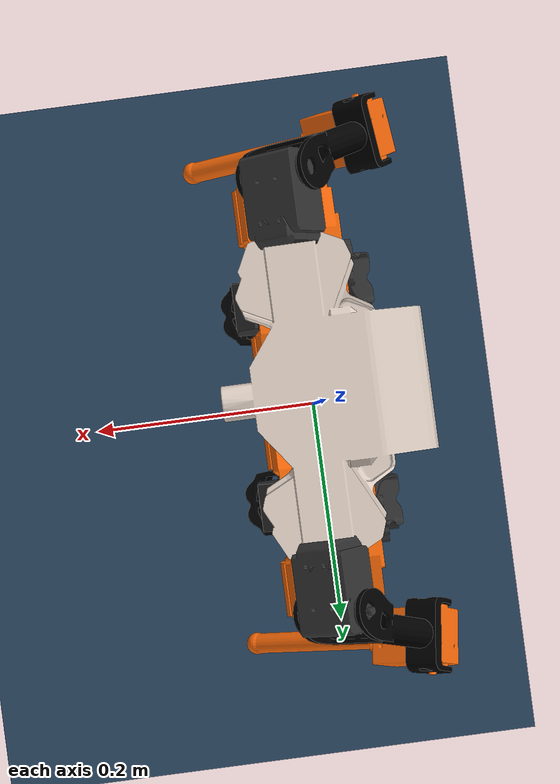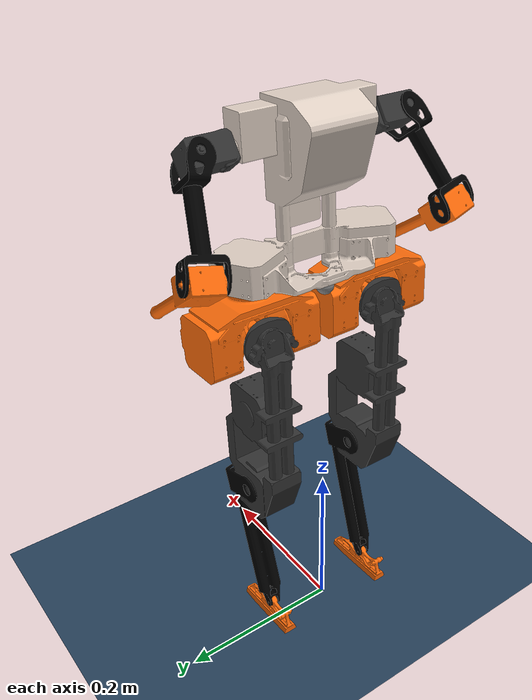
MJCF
<mujoco model="bruce scene">
    <include file="bruce_mujoco.xml"/>

    <statistic center="0 0 1" extent="1.8"/>

    <option timestep="0.001" gravity="0 0 -9.81" tolerance="1e-05" cone="elliptic" jacobian="dense" solver="Newton"  noslip_iterations="10" integrator="Euler" iterations="30" impratio="10.0"/>
    <option>
      <flag override="enable" gravity="enable"/>
    </option>

    <default>
      <joint limited="false" damping="2" armature="0.1" stiffness="0" frictionloss="0.2"/>
      <motor gear="1 0 0 0 0 0" ctrllimited="false" ctrlrange="-100 100"/>
    </default>

    <visual>
      <headlight diffuse="0.6 0.6 0.6" ambient="0.3 0.3 0.3" specular="0 0 0"/>
      <rgba haze="0.15 0.25 0.35 1"/>
      <global azimuth="160" elevation="-20"/>
    </visual>

    <asset>
      <texture type="skybox" builtin="gradient" rgb1="0.3 0.5 0.7" rgb2="0 0 0" width="512" height="3072"/>
      <texture type="2d" name="groundplane" builtin="checker" mark="edge" rgb1="0.2 0.3 0.4" rgb2="0.1 0.2 0.3"
        markrgb="0.8 0.8 0.8" width="300" height="300"/>
      <material name="groundplane" texture="groundplane" texuniform="true" texrepeat="5 5" reflectance="0.2"/>
    </asset>

    <worldbody>
      <light pos="0 0 3.5" dir="0 0 -1" directional="true"/>
      <geom name="floor" size="0 0 0.05" type="plane" material="groundplane"/>
    </worldbody>

  </mujoco>

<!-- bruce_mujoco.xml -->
<mujoco model="bruce">
    <compiler angle="radian" meshdir="../meshes" autolimits="true"/>
    <size njmax="500" nconmax="100" />
    <asset>
        <mesh name="base_link" file="base_link.STL"/>
        <mesh name="hip_yaw_link_r" file="hip_yaw_link_r.STL"/>
        <mesh name="hip_roll_link_r" file="hip_roll_link_r.STL"/>
        <mesh name="hip_pitch_link_r" file="hip_pitch_link_r.STL"/>
        <mesh name="knee_pitch_link_r" file="knee_pitch_link_r.STL"/>
        <mesh name="ankle_pitch_link_r" file="ankle_pitch_link_r.STL"/>
        <mesh name="hip_yaw_link_l" file="hip_yaw_link_l.STL"/>
        <mesh name="hip_roll_link_l" file="hip_roll_link_l.STL"/>
        <mesh name="hip_pitch_link_l" file="hip_pitch_link_l.STL"/>
        <mesh name="knee_pitch_link_l" file="knee_pitch_link_l.STL"/>
        <mesh name="ankle_pitch_link_l" file="ankle_pitch_link_l.STL"/>
        <mesh name="shoulder_pitch_link_r" file="shoulder_pitch_link_r.STL"/>
        <mesh name="shoulder_roll_link_r" file="shoulder_roll_link_r.STL"/>
        <mesh name="elbow_pitch_link_r" file="elbow_pitch_link_r.STL"/>
        <mesh name="shoulder_pitch_link_l" file="shoulder_pitch_link_l.STL"/>
        <mesh name="shoulder_roll_link_l" file="shoulder_roll_link_l.STL"/>
        <mesh name="elbow_pitch_link_l" file="elbow_pitch_link_l.STL"/>
    </asset>
    <worldbody>
        <body name="base_link" pos="0 0 0.47" euler='0 0.05 0'>
            <freejoint/>
            <inertial pos="0.02259605 -0.00011305 0.06140054" mass="1.4" diaginertia="0.0133543 0.01023631 0.005471"/>
            <geom type="mesh" rgba="0.870588 0.811765 0.764706 1" mesh="base_link" />
            <site name='imu' size='0.01' pos='0.0 0 0.0'/>
            <!-- ARM -->
            <geom pos="0.029216 -0.12375 0.152985" quat="0.620545 0.620545 -0.339005 0.339005" type="mesh" rgba="0.2 0.2 0.2 1" mesh="shoulder_pitch_link_r" />
            <geom pos="0.029216 -0.12375 0.152985" quat="-0.475932 0.105751 -0.871188 0.0577721" type="mesh" rgba="0 0 0 1" mesh="shoulder_roll_link_r" />
            <geom pos="-0.0260507 -0.156023 0.0576581" quat="-0.755321 -0.591798 -0.221617 0.173638" type="mesh" rgba="1 0.423529 0.0392157 1" mesh="elbow_pitch_link_r" />
            <geom pos="0.029216 0.12375 0.152985" quat="0.336393 -0.336393 0.621964 0.621964" type="mesh" rgba="0.2 0.2 0.2 1" mesh="shoulder_pitch_link_l" />
            <geom pos="0.029216 0.12375 0.152985" quat="0.472266 0.105993 0.873181 0.057327" type="mesh" rgba="0 0 0 1" mesh="shoulder_roll_link_l" />
            <geom pos="-0.0268502 0.156023 0.0581261" quat="0.754383 -0.591063 0.22479 0.176125" type="mesh" rgba="1 0.423529 0.0392157 1" mesh="elbow_pitch_link_l" />
             <!-- RIGHT LEG -->
            <body name="hip_yaw_link_r" pos="0.029216 -0.0758557 -0.039765" quat="0.707107 0 0 -0.707107">
                <inertial pos="2.71e-06 -0.00024824 0.00522427" quat="0.517691 0.482114 0.518083 0.480784" mass="0.637563" diaginertia="0.0016174 0.00152078 0.000485406" />
                <joint name="hip_yaw_r" pos="0 0 0" axis="0 0 1" limited="true" range="-3.1415 3.1415"/>
                <geom type="mesh" rgba="1 0.423529 0.0392157 1" mesh="hip_yaw_link_r" contype="0" conaffinity="0"/>
                <body name="hip_pitch_link_r" pos="0 0 0" quat="0.5 -0.5 0.5 0.5">
                    <inertial pos="-1.51e-07 0 6.88e-06" mass="0.05" diaginertia="1e-05 1e-05 1e-05"/>
                    <joint name="hip_pitch_r" pos="0 0 0" axis="0 0 1" limited="true" range="-3.1415 3.1415"/>
                    <geom type="mesh" rgba="1 0.423529 0.0392157 1" mesh="hip_roll_link_r" contype="0" conaffinity="0"/>
                    <body name="hip_roll_link_r" pos="0 0 0" quat="0.707107 0.707107 0 0">
                        <inertial pos="0.140714 -0.0086817 0.00167429" quat="-0.0210718 0.710934 0.00543456 0.702922" mass="0.72849" diaginertia="0.0181996 0.0179488 0.000479326" />
                        <joint name="hip_roll_r" pos="0 0 0" axis="0 0 1" limited="true" range="-3.1415 3.1415" />
                        <geom type="mesh" rgba="0.2 0.2 0.2 1" mesh="hip_pitch_link_r"/>
                        <body name="knee_pitch_link_r" pos="0.204949 0 0">
                            <inertial pos="0.0729308 0.0174645 0.00216432" quat="-0.0124752 0.71085 -0.0538621 0.701167" mass="0.0956654" diaginertia="0.00108397 0.00102192 0.000106307" />
                            <joint name="knee_pitch_r" pos="0 0 0" axis="0 0 1" limited="true" range="-3.1415 3.1415"/>
                            <geom type="mesh" rgba="0 0 0 1" mesh="knee_pitch_link_r"/>
                            <body name="ankle_pitch_link_r" pos="0.199881 0 0">
                                <inertial pos="0.0120775 0.0019746 0.00029511" quat="0.443128 0.545146 -0.456612 0.545855" mass="0.0276265" diaginertia="2.58838e-05 2.09859e-05 5.64035e-06" />
                                <joint name="ankle_pitch_r" pos="0 0 0" axis="0 0 1" limited="true" range="-3.1415 3.1415"/>
                                <geom type="mesh" rgba="1 0.423529 0.0392157 1" mesh="ankle_pitch_link_r"/>
                            </body>
                        </body>
                    </body>
                </body>
            </body>
             <!-- LEFT LEG -->
            <body name="hip_yaw_link_l" pos="0.029216 0.0758557 -0.039765" quat="0.707107 0 0 -0.707107">
                <inertial pos="0 -0.00020849 0.00528032" quat="0.518836 0.480432 0.518756 0.480506" mass="0.637386" diaginertia="0.00161868 0.00152047 0.0004852" />
                <joint name="hip_yaw_l" pos="0 0 0" axis="0 0 1" limited="true" range="-3.1415 3.1415" />
                <geom type="mesh" rgba="1 0.423529 0.0392157 1" mesh="hip_yaw_link_l"  contype="0" conaffinity="0"/>
                <body name="hip_pitch_link_l" pos="0 0 0" quat="0.500001 -0.499999 0.500001 0.499999">
                    <inertial pos="-1.51e-07 0 6.88e-06" mass="0.05" diaginertia="1e-05 1e-05 1e-05" />
                    <joint name="hip_pitch_l" pos="0 0 0" axis="0 0 1" limited="true" range="-3.1415 3.1415" />
                    <geom type="mesh" rgba="1 0.423529 0.0392157 1" mesh="hip_roll_link_l"  contype="0" conaffinity="0"/>
                    <body name="hip_roll_link_l" pos="0 0 0" quat="0.707107 0.707107 0 0">
                        <inertial pos="0.142447 -0.00832054 0.00049317" quat="-0.002203 0.702817 0.024599 0.710942" mass="0.720628" diaginertia="0.018195 0.0179541 0.000461885" />
                        <joint name="hip_roll_l" pos="0 0 0" axis="0 0 1" limited="true" range="-3.1415 3.1415" />
                        <geom type="mesh" rgba="0.2 0.2 0.2 1" mesh="hip_pitch_link_l" />
                        <body name="knee_pitch_link_l" pos="0.204949 0 0">
                            <inertial pos="0.0730996 0.0178102 -0.00219767" quat="0.0505999 0.70058 0.00930476 0.711716" mass="0.0952654" diaginertia="0.00107995 0.00101966 0.000104635" />
                            <joint name="knee_pitch_l" pos="0 0 0" axis="0 0 1" limited="true" range="-3.1415 3.1415" />
                            <geom type="mesh" rgba="0 0 0 1" mesh="knee_pitch_link_l" />
                            <body name="ankle_pitch_link_l" pos="0.199881 0 0">
                                <inertial pos="0.0123398 0.00253004 -0.00030441" quat="0.455603 0.546571 -0.442281 0.545962" mass="0.0274829" diaginertia="2.60237e-05 2.09939e-05 5.69233e-06" />
                                <joint name="ankle_pitch_l" pos="0 0 0" axis="0 0 1" limited="true" range="-3.1415 3.1415" />
                                <geom type="mesh" rgba="1 0.423529 0.0392157 1" mesh="ankle_pitch_link_l" />
                            </body>
                        </body>
                    </body>
                </body>
            </body>
        </body>
    </worldbody>
    <actuator>
    <motor name="hip_yaw_r" joint='hip_yaw_r' gear="1 0 0 0 0 0" ctrlrange='-200 200'/>
    <motor name="hip_pitch_r" joint='hip_pitch_r' gear="1 0 0 0 0 0" ctrlrange='-200 200'/>
    <motor name="hip_roll_r" joint='hip_roll_r' gear="1 0 0 0 0 0" ctrlrange='-200 200'/>
    <motor name="knee_pitch_r" joint='knee_pitch_r' gear="1 0 0 0 0 0" ctrlrange='-200 200'/>
    <motor name="ankle_pitch_r" joint='ankle_pitch_r' gear="1 0 0 0 0 0" ctrlrange='-200 200'/>

    <motor name="hip_yaw_l" joint='hip_yaw_l' gear="1 0 0 0 0 0" ctrlrange='-200 200'/>
    <motor name="hip_pitch_l" joint='hip_pitch_l' gear="1 0 0 0 0 0" ctrlrange='-200 200'/>
    <motor name="hip_roll_l" joint='hip_roll_l' gear="1 0 0 0 0 0" ctrlrange='-200 200'/>
    <motor name="knee_pitch_l" joint='knee_pitch_l' gear="1 0 0 0 0 0" ctrlrange='-200 200'/>
    <motor name="ankle_pitch_l" joint='ankle_pitch_l' gear="1 0 0 0 0 0" ctrlrange='-200 200'/>
  </actuator>
    <sensor>
        <actuatorpos name='hip_yaw_r_p'  actuator='hip_yaw_r' user='13'/>
        <actuatorpos name='hip_pitch_r_p'  actuator='hip_pitch_r' user='13'/>
        <actuatorpos name='hip_roll_r_p'  actuator='hip_roll_r' user='13'/>
        <actuatorpos name='knee_pitch_r_p'  actuator='knee_pitch_r' user='13'/>
        <actuatorpos name='ankle_pitch_r_p'  actuator='ankle_pitch_r' user='13'/>
        <actuatorpos name='hip_yaw_l_p'  actuator='hip_yaw_l' user='13'/>
        <actuatorpos name='hip_roll_l_p'  actuator='hip_roll_l' user='13'/>
        <actuatorpos name='hip_pitch_l_p'  actuator='hip_pitch_l' user='13'/>
        <actuatorpos name='knee_pitch_l_p'  actuator='knee_pitch_l' user='13'/>
        <actuatorpos name='ankle_pitch_l_p'  actuator='ankle_pitch_l' user='13'/>

        <actuatorvel name='hip_yaw_r_v'  actuator='hip_yaw_r' user='13'/>
        <actuatorvel name='hip_pitch_r_v'  actuator='hip_pitch_r' user='13'/>
        <actuatorvel name='hip_roll_r_v'  actuator='hip_roll_r' user='13'/>
        <actuatorvel name='knee_pitch_r_v'  actuator='knee_pitch_r' user='13'/>
        <actuatorvel name='ankle_pitch_r_v'  actuator='ankle_pitch_r' user='13'/>
        <actuatorvel name='hip_yaw_l_v'  actuator='hip_yaw_l' user='13'/>
        <actuatorvel name='hip_roll_l_v'  actuator='hip_roll_l' user='13'/>
        <actuatorvel name='hip_pitch_l_v'  actuator='hip_pitch_l' user='13'/>
        <actuatorvel name='knee_pitch_l_v'  actuator='knee_pitch_l' user='13'/>
        <actuatorvel name='ankle_pitch_l_v'  actuator='ankle_pitch_l' user='13'/>

        <actuatorfrc name='hip_yaw_r_f'  actuator='hip_yaw_r' user='13' noise='1e-3'/>
        <actuatorfrc name='hip_pitch_r_f'  actuator='hip_pitch_r' user='13' noise='1e-3'/>
        <actuatorfrc name='hip_roll_r_f'  actuator='hip_roll_r' user='13' noise='1e-3'/>
        <actuatorfrc name='knee_pitch_r_f'  actuator='knee_pitch_r' user='13' noise='1e-3'/>
        <actuatorfrc name='ankle_pitch_r_f'  actuator='ankle_pitch_r' user='13' noise='1e-3'/>
        <actuatorfrc name='hip_yaw_l_f'  actuator='hip_yaw_l' user='13' noise='1e-3'/>
        <actuatorfrc name='hip_roll_l_f'  actuator='hip_roll_l' user='13' noise='1e-3'/>
        <actuatorfrc name='hip_pitch_l_f'  actuator='hip_pitch_l' user='13' noise='1e-3'/>
        <actuatorfrc name='knee_pitch_l_f'  actuator='knee_pitch_l' user='13' noise='1e-3'/>
        <actuatorfrc name='ankle_pitch_l_f'  actuator='ankle_pitch_l' user='13' noise='1e-3'/>

        <framequat     name='orientation' objtype='site' noise='0.001' objname='imu'/>
        <framepos     name='position' objtype='site' noise='0.001' objname='imu'/>
        <gyro          name='angular-velocity'    site='imu' noise='0.005' cutoff='34.9'/>
        <velocimeter   name='linear-velocity'     site='imu' noise='0.001' cutoff='30'/>
        <accelerometer name='linear-acceleration' site='imu' noise='0.005' cutoff='157'/>
        <magnetometer  name='magnetometer'        site='imu'/>
    </sensor>
</mujoco>
